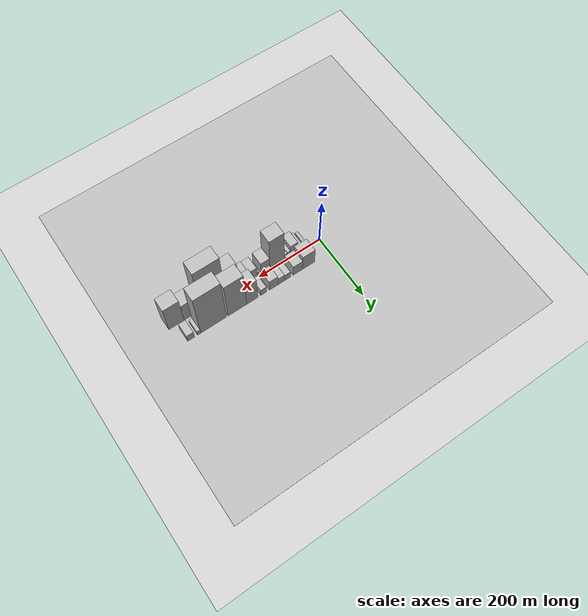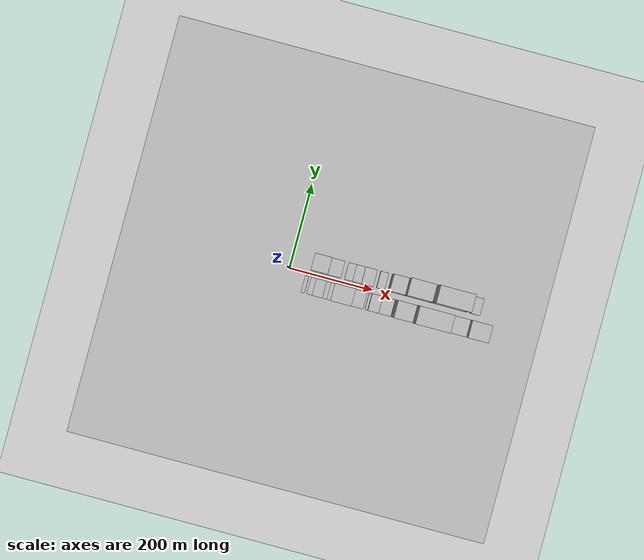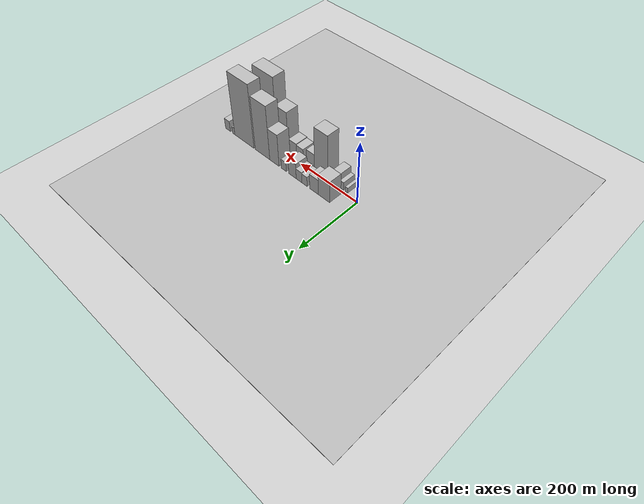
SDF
<?xml version="1.0" encoding="utf-8"?>

<sdf version="1.6">

   <world name="default">

      <gui fullscreen="0">

         <camera name="user_camera">

            <pose>-15 0 4.57585 0 0 0</pose>

            <view_controller>orbit</view_controller>

         </camera>

      </gui>

      <scene>

         <sky>

           <clouds>

             <speed>12</speed>

           </clouds>

         </sky>

         <ambient>0.4 0.4 0.4 1</ambient>

         <background>0.7 0.7 0.7 1</background>

         <shadows>1</shadows>

      </scene>

      <gravity>0 0 -9.8066</gravity>

      <magnetic_field>6e-06 2.3e-05 -4.2e-05</magnetic_field>

      <physics default="0" name="default_physics" type="ode">

         <ode>

            <solver>

               <type>quick</type>

               <iters>10</iters>

               <sor>1.0</sor>

               <use_dynamic_moi_rescaling>0</use_dynamic_moi_rescaling>

            </solver>

            <constraints>

               <cfm>0</cfm>

               <erp>0.2</erp>

               <contact_max_correcting_vel>100</contact_max_correcting_vel>

               <contact_surface_layer>0.001</contact_surface_layer>

            </constraints>

         </ode>

         <max_step_size>0.004</max_step_size>

         <real_time_factor>1</real_time_factor>

         <real_time_update_rate>250</real_time_update_rate>

      </physics>

      <light name="sun" type="directional">

         <cast_shadows>1</cast_shadows>

         <pose>0 0 10 0 0 0</pose>

         <diffuse>0.8 0.8 0.8 1</diffuse>

         <specular>0.2 0.2 0.2 1</specular>

         <attenuation>

            <range>1000</range>

            <constant>0.9</constant>

            <linear>0.01</linear>

            <quadratic>0.001</quadratic>

         </attenuation>

         <direction>-0.5 0.1 -0.9</direction>

      </light>

      <include>

         <name>ground_plane_1</name>

         <uri>model://HANNAS_ground_plane</uri>

         <pose>0 0 0  0 0 0</pose>

      </include>

      <include>

         <name>ground_plane_2</name>

         <uri>model://HANNAS_ground_plane</uri>

         <pose>100 0 0  0 0 0</pose>

      </include>

      <model name="building_1">

         <static>1</static>

         <pose frame="">69.8344 27.5000 0 0.000000 0.000000 1.570796</pose>

         <link name="link">

            <pose frame="">0 0 36.00 0 0 0</pose>

            <collision name="collision">

               <geometry>

                  <box>

                     <size>40.0000 39.6687 72.0000</size>

                  </box>

               </geometry>

               <max_contacts>10</max_contacts>

               <surface>

                  <contact>

                     <ode/>

                  </contact>

                  <bounce/>

                  <friction>

                     <torsional>

                        <ode/>

                     </torsional>

                     <ode/>

                  </friction>

               </surface>

            </collision>

            <visual name="visual">

               <cast_shadows>0</cast_shadows>

               <geometry>

                  <box>

                     <size>40.0000 39.6687 72.0000</size>

                  </box>

               </geometry>

               <material>

                  <script>

                     <uri>model://HANNAS_wall/materials/scripts</uri>

                     <uri>model://HANNAS_wall/materials/textures</uri>

                     <name>vrc/HANNAS_wall</name>

                  </script>

               </material>

            </visual>

            <self_collide>0</self_collide>

            <enable_wind>0</enable_wind>

            <kinematic>0</kinematic>

         </link>

      </model>

      <model name="building_2">

         <static>1</static>

         <pose frame="">104.9173 27.5000 0 0.000000 0.000000 1.570796</pose>

         <link name="link">

            <pose frame="">0 0 25.50 0 0 0</pose>

            <collision name="collision">

               <geometry>

                  <box>

                     <size>40.0000 30.4970 51.0000</size>

                  </box>

               </geometry>

               <max_contacts>10</max_contacts>

               <surface>

                  <contact>

                     <ode/>

                  </contact>

                  <bounce/>

                  <friction>

                     <torsional>

                        <ode/>

                     </torsional>

                     <ode/>

                  </friction>

               </surface>

            </collision>

            <visual name="visual">

               <cast_shadows>0</cast_shadows>

               <geometry>

                  <box>

                     <size>40.0000 30.4970 51.0000</size>

                  </box>

               </geometry>

               <material>

                  <script>

                     <uri>model://HANNAS_wall/materials/scripts</uri>

                     <uri>model://HANNAS_wall/materials/textures</uri>

                     <name>vrc/HANNAS_wall</name>

                  </script>

               </material>

            </visual>

            <self_collide>0</self_collide>

            <enable_wind>0</enable_wind>

            <kinematic>0</kinematic>

         </link>

      </model>

      <model name="building_3">

         <static>1</static>

         <pose frame="">138.7140 27.5000 0 0.000000 0.000000 1.570796</pose>

         <link name="link">

            <pose frame="">0 0 16.50 0 0 0</pose>

            <collision name="collision">

               <geometry>

                  <box>

                     <size>40.0000 19.0965 33.0000</size>

                  </box>

               </geometry>

               <max_contacts>10</max_contacts>

               <surface>

                  <contact>

                     <ode/>

                  </contact>

                  <bounce/>

                  <friction>

                     <torsional>

                        <ode/>

                     </torsional>

                     <ode/>

                  </friction>

               </surface>

            </collision>

            <visual name="visual">

               <cast_shadows>0</cast_shadows>

               <geometry>

                  <box>

                     <size>40.0000 19.0965 33.0000</size>

                  </box>

               </geometry>

               <material>

                  <script>

                     <uri>model://HANNAS_wall/materials/scripts</uri>

                     <uri>model://HANNAS_wall/materials/textures</uri>

                     <name>vrc/HANNAS_wall</name>

                  </script>

               </material>

            </visual>

            <self_collide>0</self_collide>

            <enable_wind>0</enable_wind>

            <kinematic>0</kinematic>

         </link>

      </model>

      <model name="building_4">

         <static>1</static>

         <pose frame="">158.7225 27.5000 0 0.000000 0.000000 1.570796</pose>

         <link name="link">

            <pose frame="">0 0 18.00 0 0 0</pose>

            <collision name="collision">

               <geometry>

                  <box>

                     <size>40.0000 20.9205 36.0000</size>

                  </box>

               </geometry>

               <max_contacts>10</max_contacts>

               <surface>

                  <contact>

                     <ode/>

                  </contact>

                  <bounce/>

                  <friction>

                     <torsional>

                        <ode/>

                     </torsional>

                     <ode/>

                  </friction>

               </surface>

            </collision>

            <visual name="visual">

               <cast_shadows>0</cast_shadows>

               <geometry>

                  <box>

                     <size>40.0000 20.9205 36.0000</size>

                  </box>

               </geometry>

               <material>

                  <script>

                     <uri>model://HANNAS_wall/materials/scripts</uri>

                     <uri>model://HANNAS_wall/materials/textures</uri>

                     <name>vrc/HANNAS_wall</name>

                  </script>

               </material>

            </visual>

            <self_collide>0</self_collide>

            <enable_wind>0</enable_wind>

            <kinematic>0</kinematic>

         </link>

      </model>

      <model name="building_5">

         <static>1</static>

         <pose frame="">182.9783 27.5000 0 0.000000 0.000000 1.570796</pose>

         <link name="link">

            <pose frame="">0 0 25.50 0 0 0</pose>

            <collision name="collision">

               <geometry>

                  <box>

                     <size>40.0000 27.5910 51.0000</size>

                  </box>

               </geometry>

               <max_contacts>10</max_contacts>

               <surface>

                  <contact>

                     <ode/>

                  </contact>

                  <bounce/>

                  <friction>

                     <torsional>

                        <ode/>

                     </torsional>

                     <ode/>

                  </friction>

               </surface>

            </collision>

            <visual name="visual">

               <cast_shadows>0</cast_shadows>

               <geometry>

                  <box>

                     <size>40.0000 27.5910 51.0000</size>

                  </box>

               </geometry>

               <material>

                  <script>

                     <uri>model://HANNAS_wall/materials/scripts</uri>

                     <uri>model://HANNAS_wall/materials/textures</uri>

                     <name>vrc/HANNAS_wall</name>

                  </script>

               </material>

            </visual>

            <self_collide>0</self_collide>

            <enable_wind>0</enable_wind>

            <kinematic>0</kinematic>

         </link>

      </model>

      <model name="building_6">

         <static>1</static>

         <pose frame="">215.0723 27.5000 0 0.000000 0.000000 1.570796</pose>

         <link name="link">

            <pose frame="">0 0 16.50 0 0 0</pose>

            <collision name="collision">

               <geometry>

                  <box>

                     <size>40.0000 18.5970 33.0000</size>

                  </box>

               </geometry>

               <max_contacts>10</max_contacts>

               <surface>

                  <contact>

                     <ode/>

                  </contact>

                  <bounce/>

                  <friction>

                     <torsional>

                        <ode/>

                     </torsional>

                     <ode/>

                  </friction>

               </surface>

            </collision>

            <visual name="visual">

               <cast_shadows>0</cast_shadows>

               <geometry>

                  <box>

                     <size>40.0000 18.5970 33.0000</size>

                  </box>

               </geometry>

               <material>

                  <script>

                     <uri>model://HANNAS_wall/materials/scripts</uri>

                     <uri>model://HANNAS_wall/materials/textures</uri>

                     <name>vrc/HANNAS_wall</name>

                  </script>

               </material>

            </visual>

            <self_collide>0</self_collide>

            <enable_wind>0</enable_wind>

            <kinematic>0</kinematic>

         </link>

      </model>

      <model name="building_7">

         <static>1</static>

         <pose frame="">251.3173 27.5000 0 0.000000 0.000000 1.570796</pose>

         <link name="link">

            <pose frame="">0 0 54.00 0 0 0</pose>

            <collision name="collision">

               <geometry>

                  <box>

                     <size>40.0000 35.8931 108.0000</size>

                  </box>

               </geometry>

               <max_contacts>10</max_contacts>

               <surface>

                  <contact>

                     <ode/>

                  </contact>

                  <bounce/>

                  <friction>

                     <torsional>

                        <ode/>

                     </torsional>

                     <ode/>

                  </friction>

               </surface>

            </collision>

            <visual name="visual">

               <cast_shadows>0</cast_shadows>

               <geometry>

                  <box>

                     <size>40.0000 35.8931 108.0000</size>

                  </box>

               </geometry>

               <material>

                  <script>

                     <uri>model://HANNAS_wall/materials/scripts</uri>

                     <uri>model://HANNAS_wall/materials/textures</uri>

                     <name>vrc/HANNAS_wall</name>

                  </script>

               </material>

            </visual>

            <self_collide>0</self_collide>

            <enable_wind>0</enable_wind>

            <kinematic>0</kinematic>

         </link>

      </model>

      <model name="building_8">

         <static>1</static>

         <pose frame="">298.0282 27.5000 0 0.000000 0.000000 1.570796</pose>

         <link name="link">

            <pose frame="">0 0 90.00 0 0 0</pose>

            <collision name="collision">

               <geometry>

                  <box>

                     <size>40.0000 57.5286 180.0000</size>

                  </box>

               </geometry>

               <max_contacts>10</max_contacts>

               <surface>

                  <contact>

                     <ode/>

                  </contact>

                  <bounce/>

                  <friction>

                     <torsional>

                        <ode/>

                     </torsional>

                     <ode/>

                  </friction>

               </surface>

            </collision>

            <visual name="visual">

               <cast_shadows>0</cast_shadows>

               <geometry>

                  <box>

                     <size>40.0000 57.5286 180.0000</size>

                  </box>

               </geometry>

               <material>

                  <script>

                     <uri>model://HANNAS_wall/materials/scripts</uri>

                     <uri>model://HANNAS_wall/materials/textures</uri>

                     <name>vrc/HANNAS_wall</name>

                  </script>

               </material>

            </visual>

            <self_collide>0</self_collide>

            <enable_wind>0</enable_wind>

            <kinematic>0</kinematic>

         </link>

      </model>

      <model name="building_9">

         <static>1</static>

         <pose frame="">371.4095 27.5000 0 0.000000 0.000000 1.570796</pose>

         <link name="link">

            <pose frame="">0 0 106.50 0 0 0</pose>

            <collision name="collision">

               <geometry>

                  <box>

                     <size>40.0000 79.2340 213.0000</size>

                  </box>

               </geometry>

               <max_contacts>10</max_contacts>

               <surface>

                  <contact>

                     <ode/>

                  </contact>

                  <bounce/>

                  <friction>

                     <torsional>

                        <ode/>

                     </torsional>

                     <ode/>

                  </friction>

               </surface>

            </collision>

            <visual name="visual">

               <cast_shadows>0</cast_shadows>

               <geometry>

                  <box>

                     <size>40.0000 79.2340 213.0000</size>

                  </box>

               </geometry>

               <material>

                  <script>

                     <uri>model://HANNAS_wall/materials/scripts</uri>

                     <uri>model://HANNAS_wall/materials/textures</uri>

                     <name>vrc/HANNAS_wall</name>

                  </script>

               </material>

            </visual>

            <self_collide>0</self_collide>

            <enable_wind>0</enable_wind>

            <kinematic>0</kinematic>

         </link>

      </model>

      <model name="building_10">

         <static>1</static>

         <pose frame="">415.8608 27.5000 0 0.000000 0.000000 1.570796</pose>

         <link name="link">

            <pose frame="">0 0 12.00 0 0 0</pose>

            <collision name="collision">

               <geometry>

                  <box>

                     <size>40.0000 9.6687 24.0000</size>

                  </box>

               </geometry>

               <max_contacts>10</max_contacts>

               <surface>

                  <contact>

                     <ode/>

                  </contact>

                  <bounce/>

                  <friction>

                     <torsional>

                        <ode/>

                     </torsional>

                     <ode/>

                  </friction>

               </surface>

            </collision>

            <visual name="visual">

               <cast_shadows>0</cast_shadows>

               <geometry>

                  <box>

                     <size>40.0000 9.6687 24.0000</size>

                  </box>

               </geometry>

               <material>

                  <script>

                     <uri>model://HANNAS_wall/materials/scripts</uri>

                     <uri>model://HANNAS_wall/materials/textures</uri>

                     <name>vrc/HANNAS_wall</name>

                  </script>

               </material>

            </visual>

            <self_collide>0</self_collide>

            <enable_wind>0</enable_wind>

            <kinematic>0</kinematic>

         </link>

      </model>

      <model name="building_11">

         <static>1</static>

         <pose frame="">440.0582 27.5000 0 0.000000 0.000000 1.570796</pose>

         <link name="link">

            <pose frame="">0 0 18.00 0 0 0</pose>

            <collision name="collision">

               <geometry>

                  <box>

                     <size>40.0000 20.7260 36.0000</size>

                  </box>

               </geometry>

               <max_contacts>10</max_contacts>

               <surface>

                  <contact>

                     <ode/>

                  </contact>

                  <bounce/>

                  <friction>

                     <torsional>

                        <ode/>

                     </torsional>

                     <ode/>

                  </friction>

               </surface>

            </collision>

            <visual name="visual">

               <cast_shadows>0</cast_shadows>

               <geometry>

                  <box>

                     <size>40.0000 20.7260 36.0000</size>

                  </box>

               </geometry>

               <material>

                  <script>

                     <uri>model://HANNAS_wall/materials/scripts</uri>

                     <uri>model://HANNAS_wall/materials/textures</uri>

                     <name>vrc/HANNAS_wall</name>

                  </script>

               </material>

            </visual>

            <self_collide>0</self_collide>

            <enable_wind>0</enable_wind>

            <kinematic>0</kinematic>

         </link>

      </model>

      <model name="building_12">

         <static>1</static>

         <pose frame="">44.2804 -27.5000 0 0.000000 0.000000 1.570796</pose>

         <link name="link">

            <pose frame="">0 0 9.00 0 0 0</pose>

            <collision name="collision">

               <geometry>

                  <box>

                     <size>40.0000 8.5608 18.0000</size>

                  </box>

               </geometry>

               <max_contacts>10</max_contacts>

               <surface>

                  <contact>

                     <ode/>

                  </contact>

                  <bounce/>

                  <friction>

                     <torsional>

                        <ode/>

                     </torsional>

                     <ode/>

                  </friction>

               </surface>

            </collision>

            <visual name="visual">

               <cast_shadows>0</cast_shadows>

               <geometry>

                  <box>

                     <size>40.0000 8.5608 18.0000</size>

                  </box>

               </geometry>

               <material>

                  <script>

                     <uri>model://HANNAS_wall/materials/scripts</uri>

                     <uri>model://HANNAS_wall/materials/textures</uri>

                     <name>vrc/HANNAS_wall</name>

                  </script>

               </material>

            </visual>

            <self_collide>0</self_collide>

            <enable_wind>0</enable_wind>

            <kinematic>0</kinematic>

         </link>

      </model>

      <model name="building_13">

         <static>1</static>

         <pose frame="">60.8086 -27.5000 0 0.000000 0.000000 1.570796</pose>

         <link name="link">

            <pose frame="">0 0 13.50 0 0 0</pose>

            <collision name="collision">

               <geometry>

                  <box>

                     <size>40.0000 12.4957 27.0000</size>

                  </box>

               </geometry>

               <max_contacts>10</max_contacts>

               <surface>

                  <contact>

                     <ode/>

                  </contact>

                  <bounce/>

                  <friction>

                     <torsional>

                        <ode/>

                     </torsional>

                     <ode/>

                  </friction>

               </surface>

            </collision>

            <visual name="visual">

               <cast_shadows>0</cast_shadows>

               <geometry>

                  <box>

                     <size>40.0000 12.4957 27.0000</size>

                  </box>

               </geometry>

               <material>

                  <script>

                     <uri>model://HANNAS_wall/materials/scripts</uri>

                     <uri>model://HANNAS_wall/materials/textures</uri>

                     <name>vrc/HANNAS_wall</name>

                  </script>

               </material>

            </visual>

            <self_collide>0</self_collide>

            <enable_wind>0</enable_wind>

            <kinematic>0</kinematic>

         </link>

      </model>

      <model name="building_14">

         <static>1</static>

         <pose frame="">79.3289 -27.5000 0 0.000000 0.000000 1.570796</pose>

         <link name="link">

            <pose frame="">0 0 24.00 0 0 0</pose>

            <collision name="collision">

               <geometry>

                  <box>

                     <size>40.0000 24.5448 48.0000</size>

                  </box>

               </geometry>

               <max_contacts>10</max_contacts>

               <surface>

                  <contact>

                     <ode/>

                  </contact>

                  <bounce/>

                  <friction>

                     <torsional>

                        <ode/>

                     </torsional>

                     <ode/>

                  </friction>

               </surface>

            </collision>

            <visual name="visual">

               <cast_shadows>0</cast_shadows>

               <geometry>

                  <box>

                     <size>40.0000 24.5448 48.0000</size>

                  </box>

               </geometry>

               <material>

                  <script>

                     <uri>model://HANNAS_wall/materials/scripts</uri>

                     <uri>model://HANNAS_wall/materials/textures</uri>

                     <name>vrc/HANNAS_wall</name>

                  </script>

               </material>

            </visual>

            <self_collide>0</self_collide>

            <enable_wind>0</enable_wind>

            <kinematic>0</kinematic>

         </link>

      </model>

      <model name="building_15">

         <static>1</static>

         <pose frame="">96.6888 -27.5000 0 0.000000 0.000000 1.570796</pose>

         <link name="link">

            <pose frame="">0 0 12.00 0 0 0</pose>

            <collision name="collision">

               <geometry>

                  <box>

                     <size>40.0000 10.1751 24.0000</size>

                  </box>

               </geometry>

               <max_contacts>10</max_contacts>

               <surface>

                  <contact>

                     <ode/>

                  </contact>

                  <bounce/>

                  <friction>

                     <torsional>

                        <ode/>

                     </torsional>

                     <ode/>

                  </friction>

               </surface>

            </collision>

            <visual name="visual">

               <cast_shadows>0</cast_shadows>

               <geometry>

                  <box>

                     <size>40.0000 10.1751 24.0000</size>

                  </box>

               </geometry>

               <material>

                  <script>

                     <uri>model://HANNAS_wall/materials/scripts</uri>

                     <uri>model://HANNAS_wall/materials/textures</uri>

                     <name>vrc/HANNAS_wall</name>

                  </script>

               </material>

            </visual>

            <self_collide>0</self_collide>

            <enable_wind>0</enable_wind>

            <kinematic>0</kinematic>

         </link>

      </model>

      <model name="building_16">

         <static>1</static>

         <pose frame="">106.3080 -27.5000 0 0.000000 0.000000 1.570796</pose>

         <link name="link">

            <pose frame="">0 0 10.50 0 0 0</pose>

            <collision name="collision">

               <geometry>

                  <box>

                     <size>40.0000 9.0631 21.0000</size>

                  </box>

               </geometry>

               <max_contacts>10</max_contacts>

               <surface>

                  <contact>

                     <ode/>

                  </contact>

                  <bounce/>

                  <friction>

                     <torsional>

                        <ode/>

                     </torsional>

                     <ode/>

                  </friction>

               </surface>

            </collision>

            <visual name="visual">

               <cast_shadows>0</cast_shadows>

               <geometry>

                  <box>

                     <size>40.0000 9.0631 21.0000</size>

                  </box>

               </geometry>

               <material>

                  <script>

                     <uri>model://HANNAS_wall/materials/scripts</uri>

                     <uri>model://HANNAS_wall/materials/textures</uri>

                     <name>vrc/HANNAS_wall</name>

                  </script>

               </material>

            </visual>

            <self_collide>0</self_collide>

            <enable_wind>0</enable_wind>

            <kinematic>0</kinematic>

         </link>

      </model>

      <model name="building_17">

         <static>1</static>

         <pose frame="">134.4979 -27.5000 0 0.000000 0.000000 1.570796</pose>

         <link name="link">

            <pose frame="">0 0 73.50 0 0 0</pose>

            <collision name="collision">

               <geometry>

                  <box>

                     <size>40.0000 47.3167 147.0000</size>

                  </box>

               </geometry>

               <max_contacts>10</max_contacts>

               <surface>

                  <contact>

                     <ode/>

                  </contact>

                  <bounce/>

                  <friction>

                     <torsional>

                        <ode/>

                     </torsional>

                     <ode/>

                  </friction>

               </surface>

            </collision>

            <visual name="visual">

               <cast_shadows>0</cast_shadows>

               <geometry>

                  <box>

                     <size>40.0000 47.3167 147.0000</size>

                  </box>

               </geometry>

               <material>

                  <script>

                     <uri>model://HANNAS_wall/materials/scripts</uri>

                     <uri>model://HANNAS_wall/materials/textures</uri>

                     <name>vrc/HANNAS_wall</name>

                  </script>

               </material>

            </visual>

            <self_collide>0</self_collide>

            <enable_wind>0</enable_wind>

            <kinematic>0</kinematic>

         </link>

      </model>

      <model name="building_18">

         <static>1</static>

         <pose frame="">172.6167 -27.5000 0 0.000000 0.000000 1.570796</pose>

         <link name="link">

            <pose frame="">0 0 27.00 0 0 0</pose>

            <collision name="collision">

               <geometry>

                  <box>

                     <size>40.0000 28.9208 54.0000</size>

                  </box>

               </geometry>

               <max_contacts>10</max_contacts>

               <surface>

                  <contact>

                     <ode/>

                  </contact>

                  <bounce/>

                  <friction>

                     <torsional>

                        <ode/>

                     </torsional>

                     <ode/>

                  </friction>

               </surface>

            </collision>

            <visual name="visual">

               <cast_shadows>0</cast_shadows>

               <geometry>

                  <box>

                     <size>40.0000 28.9208 54.0000</size>

                  </box>

               </geometry>

               <material>

                  <script>

                     <uri>model://HANNAS_wall/materials/scripts</uri>

                     <uri>model://HANNAS_wall/materials/textures</uri>

                     <name>vrc/HANNAS_wall</name>

                  </script>

               </material>

            </visual>

            <self_collide>0</self_collide>

            <enable_wind>0</enable_wind>

            <kinematic>0</kinematic>

         </link>

      </model>

      <model name="building_19">

         <static>1</static>

         <pose frame="">196.2464 -27.5000 0 0.000000 0.000000 1.570796</pose>

         <link name="link">

            <pose frame="">0 0 7.50 0 0 0</pose>

            <collision name="collision">

               <geometry>

                  <box>

                     <size>40.0000 6.3386 15.0000</size>

                  </box>

               </geometry>

               <max_contacts>10</max_contacts>

               <surface>

                  <contact>

                     <ode/>

                  </contact>

                  <bounce/>

                  <friction>

                     <torsional>

                        <ode/>

                     </torsional>

                     <ode/>

                  </friction>

               </surface>

            </collision>

            <visual name="visual">

               <cast_shadows>0</cast_shadows>

               <geometry>

                  <box>

                     <size>40.0000 6.3386 15.0000</size>

                  </box>

               </geometry>

               <material>

                  <script>

                     <uri>model://HANNAS_wall/materials/scripts</uri>

                     <uri>model://HANNAS_wall/materials/textures</uri>

                     <name>vrc/HANNAS_wall</name>

                  </script>

               </material>

            </visual>

            <self_collide>0</self_collide>

            <enable_wind>0</enable_wind>

            <kinematic>0</kinematic>

         </link>

      </model>

      <model name="building_20">

         <static>1</static>

         <pose frame="">212.0157 -27.5000 0 0.000000 0.000000 1.570796</pose>

         <link name="link">

            <pose frame="">0 0 22.50 0 0 0</pose>

            <collision name="collision">

               <geometry>

                  <box>

                     <size>40.0000 25.1999 45.0000</size>

                  </box>

               </geometry>

               <max_contacts>10</max_contacts>

               <surface>

                  <contact>

                     <ode/>

                  </contact>

                  <bounce/>

                  <friction>

                     <torsional>

                        <ode/>

                     </torsional>

                     <ode/>

                  </friction>

               </surface>

            </collision>

            <visual name="visual">

               <cast_shadows>0</cast_shadows>

               <geometry>

                  <box>

                     <size>40.0000 25.1999 45.0000</size>

                  </box>

               </geometry>

               <material>

                  <script>

                     <uri>model://HANNAS_wall/materials/scripts</uri>

                     <uri>model://HANNAS_wall/materials/textures</uri>

                     <name>vrc/HANNAS_wall</name>

                  </script>

               </material>

            </visual>

            <self_collide>0</self_collide>

            <enable_wind>0</enable_wind>

            <kinematic>0</kinematic>

         </link>

      </model>

      <model name="building_21">

         <static>1</static>

         <pose frame="">238.9415 -27.5000 0 0.000000 0.000000 1.570796</pose>

         <link name="link">

            <pose frame="">0 0 24.00 0 0 0</pose>

            <collision name="collision">

               <geometry>

                  <box>

                     <size>40.0000 28.6516 48.0000</size>

                  </box>

               </geometry>

               <max_contacts>10</max_contacts>

               <surface>

                  <contact>

                     <ode/>

                  </contact>

                  <bounce/>

                  <friction>

                     <torsional>

                        <ode/>

                     </torsional>

                     <ode/>

                  </friction>

               </surface>

            </collision>

            <visual name="visual">

               <cast_shadows>0</cast_shadows>

               <geometry>

                  <box>

                     <size>40.0000 28.6516 48.0000</size>

                  </box>

               </geometry>

               <material>

                  <script>

                     <uri>model://HANNAS_wall/materials/scripts</uri>

                     <uri>model://HANNAS_wall/materials/textures</uri>

                     <name>vrc/HANNAS_wall</name>

                  </script>

               </material>

            </visual>

            <self_collide>0</self_collide>

            <enable_wind>0</enable_wind>

            <kinematic>0</kinematic>

         </link>

      </model>

      <model name="building_22">

         <static>1</static>

         <pose frame="">278.0018 -27.5000 0 0.000000 0.000000 1.570796</pose>

         <link name="link">

            <pose frame="">0 0 67.50 0 0 0</pose>

            <collision name="collision">

               <geometry>

                  <box>

                     <size>40.0000 43.4692 135.0000</size>

                  </box>

               </geometry>

               <max_contacts>10</max_contacts>

               <surface>

                  <contact>

                     <ode/>

                  </contact>

                  <bounce/>

                  <friction>

                     <torsional>

                        <ode/>

                     </torsional>

                     <ode/>

                  </friction>

               </surface>

            </collision>

            <visual name="visual">

               <cast_shadows>0</cast_shadows>

               <geometry>

                  <box>

                     <size>40.0000 43.4692 135.0000</size>

                  </box>

               </geometry>

               <material>

                  <script>

                     <uri>model://HANNAS_wall/materials/scripts</uri>

                     <uri>model://HANNAS_wall/materials/textures</uri>

                     <name>vrc/HANNAS_wall</name>

                  </script>

               </material>

            </visual>

            <self_collide>0</self_collide>

            <enable_wind>0</enable_wind>

            <kinematic>0</kinematic>

         </link>

      </model>

      <model name="building_23">

         <static>1</static>

         <pose frame="">338.6125 -27.5000 0 0.000000 0.000000 1.570796</pose>

         <link name="link">

            <pose frame="">0 0 111.00 0 0 0</pose>

            <collision name="collision">

               <geometry>

                  <box>

                     <size>40.0000 77.7521 222.0000</size>

                  </box>

               </geometry>

               <max_contacts>10</max_contacts>

               <surface>

                  <contact>

                     <ode/>

                  </contact>

                  <bounce/>

                  <friction>

                     <torsional>

                        <ode/>

                     </torsional>

                     <ode/>

                  </friction>

               </surface>

            </collision>

            <visual name="visual">

               <cast_shadows>0</cast_shadows>

               <geometry>

                  <box>

                     <size>40.0000 77.7521 222.0000</size>

                  </box>

               </geometry>

               <material>

                  <script>

                     <uri>model://HANNAS_wall/materials/scripts</uri>

                     <uri>model://HANNAS_wall/materials/textures</uri>

                     <name>vrc/HANNAS_wall</name>

                  </script>

               </material>

            </visual>

            <self_collide>0</self_collide>

            <enable_wind>0</enable_wind>

            <kinematic>0</kinematic>

         </link>

      </model>

      <model name="building_24">

         <static>1</static>

         <pose frame="">402.5265 -27.5000 0 0.000000 0.000000 1.570796</pose>

         <link name="link">

            <pose frame="">0 0 45.00 0 0 0</pose>

            <collision name="collision">

               <geometry>

                  <box>

                     <size>40.0000 50.0759 90.0000</size>

                  </box>

               </geometry>

               <max_contacts>10</max_contacts>

               <surface>

                  <contact>

                     <ode/>

                  </contact>

                  <bounce/>

                  <friction>

                     <torsional>

                        <ode/>

                     </torsional>

                     <ode/>

                  </friction>

               </surface>

            </collision>

            <visual name="visual">

               <cast_shadows>0</cast_shadows>

               <geometry>

                  <box>

                     <size>40.0000 50.0759 90.0000</size>

                  </box>

               </geometry>

               <material>

                  <script>

                     <uri>model://HANNAS_wall/materials/scripts</uri>

                     <uri>model://HANNAS_wall/materials/textures</uri>

                     <name>vrc/HANNAS_wall</name>

                  </script>

               </material>

            </visual>

            <self_collide>0</self_collide>

            <enable_wind>0</enable_wind>

            <kinematic>0</kinematic>

         </link>

      </model>

      <model name="building_25">

         <static>1</static>

         <pose frame="">450.8879 -27.5000 0 0.000000 0.000000 1.570796</pose>

         <link name="link">

            <pose frame="">0 0 63.00 0 0 0</pose>

            <collision name="collision">

               <geometry>

                  <box>

                     <size>40.0000 46.6470 126.0000</size>

                  </box>

               </geometry>

               <max_contacts>10</max_contacts>

               <surface>

                  <contact>

                     <ode/>

                  </contact>

                  <bounce/>

                  <friction>

                     <torsional>

                        <ode/>

                     </torsional>

                     <ode/>

                  </friction>

               </surface>

            </collision>

            <visual name="visual">

               <cast_shadows>0</cast_shadows>

               <geometry>

                  <box>

                     <size>40.0000 46.6470 126.0000</size>

                  </box>

               </geometry>

               <material>

                  <script>

                     <uri>model://HANNAS_wall/materials/scripts</uri>

                     <uri>model://HANNAS_wall/materials/textures</uri>

                     <name>vrc/HANNAS_wall</name>

                  </script>

               </material>

            </visual>

            <self_collide>0</self_collide>

            <enable_wind>0</enable_wind>

            <kinematic>0</kinematic>

         </link>

      </model>

   </world>

</sdf>

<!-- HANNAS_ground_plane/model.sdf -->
<sdf version="1.4">
<model name="HANNAS_ground_plane">
  <static>true</static>
    <link name="link">
      <collision name="collision">
        <geometry>
          <plane>
            <normal>0 0 1</normal>
            <size>1000 1000</size>
          </plane>
        </geometry>
        <surface>
          <friction>
            <ode>
              <mu>100</mu>
              <mu2>50</mu2>
            </ode>
          </friction>
        </surface>
      </collision>
      <visual name="visual">
        <cast_shadows>false</cast_shadows>
        <geometry>
          <plane>
            <normal>0 0 1</normal>
            <size>1000 1000</size>
          </plane>
        </geometry>
        <material>
          <script>
            <uri>model://HANNAS_ground_plane/materials/scripts/HANNAS_ground_plane.material</uri>
	    <uri>model://HANNAS_ground_plane/materials/textures</uri>
            <name>HANNASGroundPlane/Image</name>
          </script>
        </material>
      </visual>
    </link>
  </model>
</sdf>
